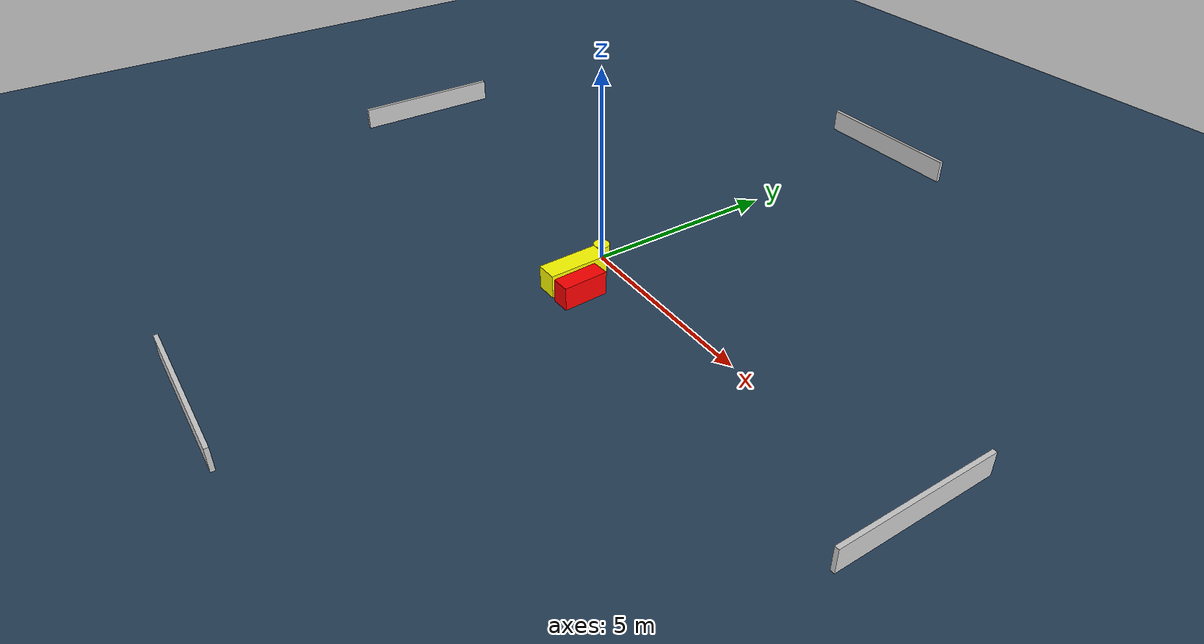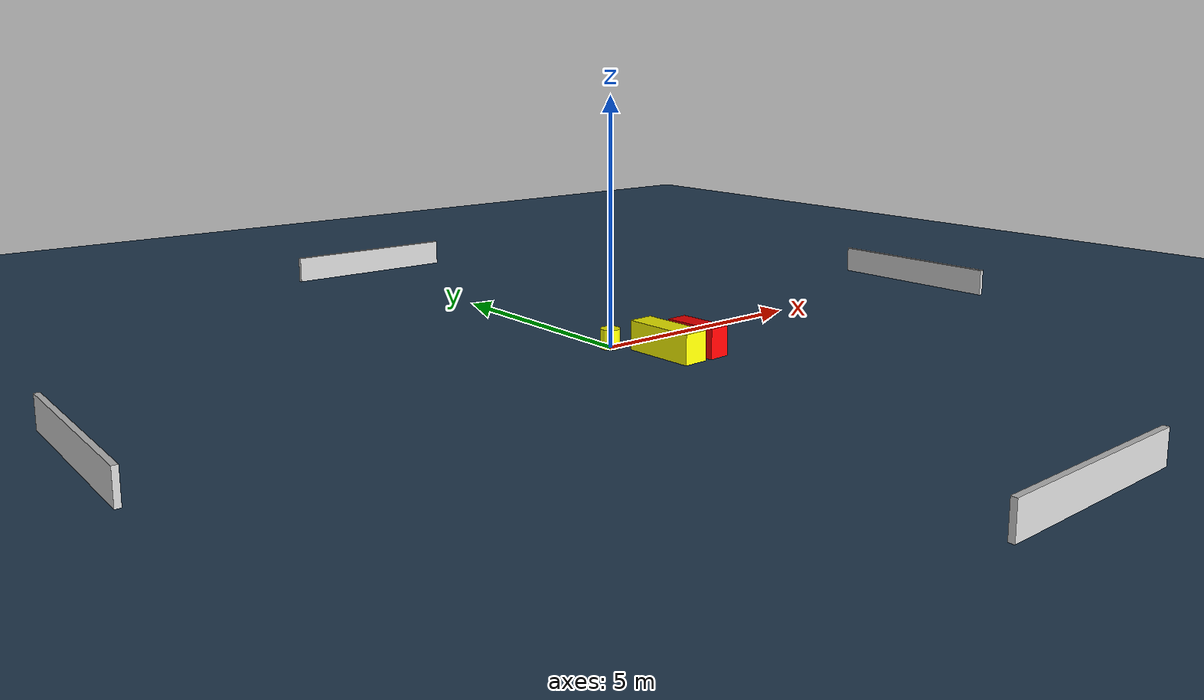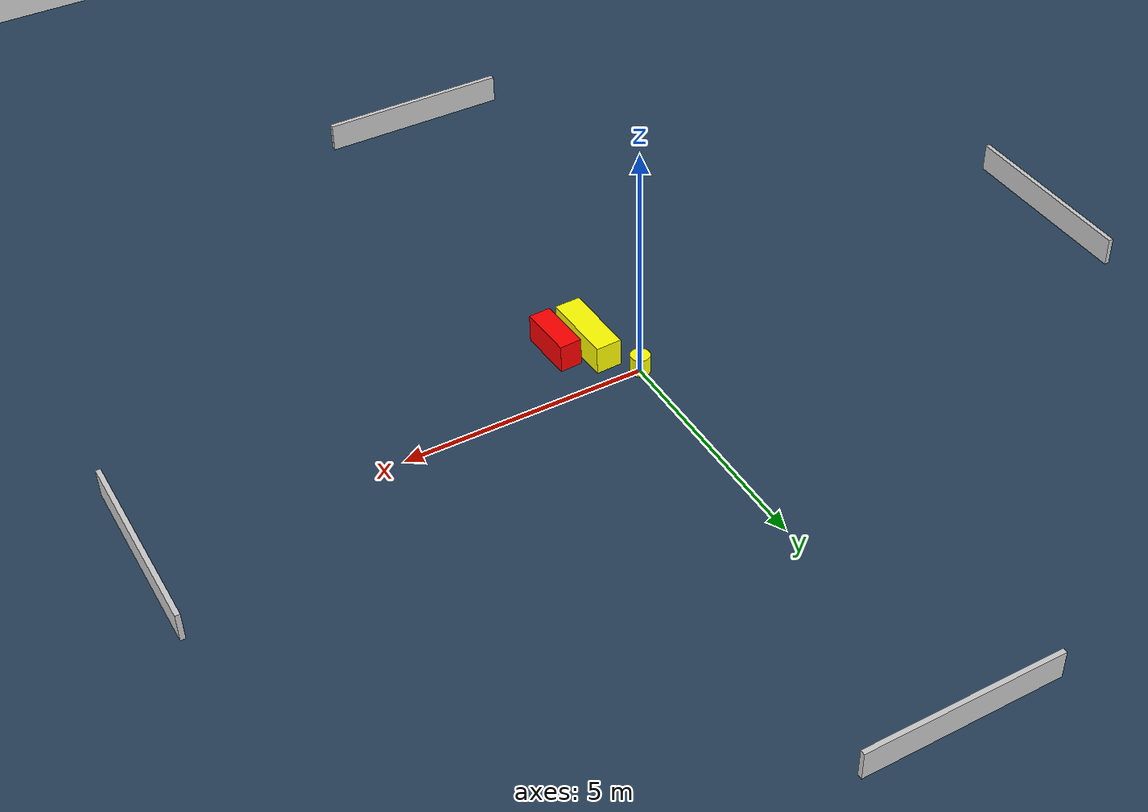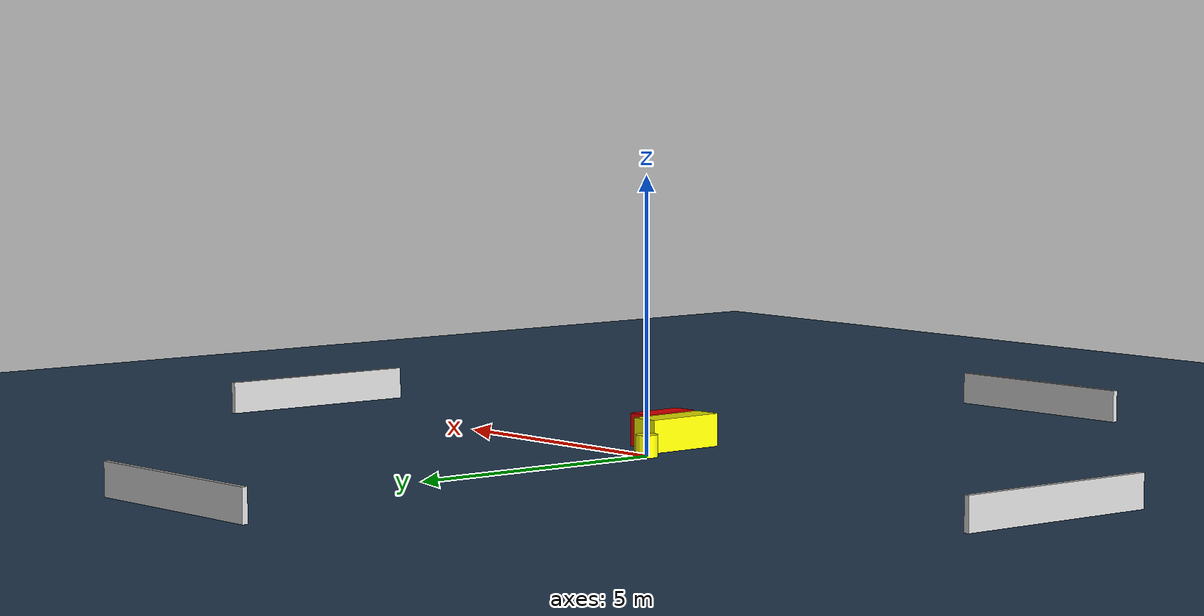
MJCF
<?xml version="1.0" ?>
<mujoco model="generated_environment">
  <option timestep="0.01" integrator="RK4" cone="elliptic"/>
  <default>
    <geom density="1"/>
  </default>
  <asset>
    <texture builtin="gradient" height="3072" name="skybox" rgb1="0.3 0.5 0.7" rgb2="0 0 0" type="skybox" width="512"/>
    <texture builtin="checker" height="300" name="groundplane" rgb1="0.2 0.3 0.4" rgb2="0.1 0.2 0.3" type="2d" width="300"/>
    <material name="groundplane" reflectance="0.2" texrepeat="5 5" texture="groundplane"/>
  </asset>
  <worldbody>
    <light dir="0 0 -1" directional="true" pos="0 0 1.5"/>
    <geom condim="3" friction="0.5 0.005 0.001" material="groundplane" name="floor" pos="0 0 0" size="0 0 0.05" type="plane"/>
    <body name="walls">
      <geom name="wall_1" condim="4" pos="-10.0 0.0 0.3" rgba="0.800000011920929 0.800000011920929 0.800000011920929 1.0" size="0.05 2.0 0.3" type="box"/>
      <geom name="wall_2" condim="4" pos="10.0 0.0 0.3" rgba="0.800000011920929 0.800000011920929 0.800000011920929 1.0" size="0.05 2.0 0.3" type="box"/>
      <geom name="wall_3" condim="4" pos="0.0 -10.0 0.3" rgba="0.800000011920929 0.800000011920929 0.800000011920929 1.0" size="2.0 0.05 0.3" type="box"/>
      <geom name="wall_4" condim="4" pos="0.0 10.0 0.3" rgba="0.800000011920929 0.800000011920929 0.800000011920929 1.0" size="2.0 0.05 0.3" type="box"/>
    </body>
    <body name="robot">
      <joint name="joint_x" type="slide" pos="0 0 0" axis="1 0 0"/>
      <joint name="joint_y" type="slide" pos="0 0 0" axis="0 1 0"/>
      <geom name="robot" type="cylinder" pos="0.0 0.0 0.2" size="0.2 0.2 0.0" mass="5.0" friction="1.0 0.005 0.0001" condim="4" rgba="1.0 1.0 0.0 1.0"/>
    </body>
    <body name="obstacle_1_movable">
      <geom name="obstacle_1_movable" condim="4" pos="0.5107998840165353 -1.1292526948216999 0.3" euler="0 0 91.85796169103874" friction="0.0 0.005 0.001" rgba="1.0 1.0 0.0 1.0" size="0.7720313370940266 0.26756818393760745 0.3" type="box" mass="0.1"/>
      <joint type="free"/>
    </body>
    <body name="obstacle_2_static">
      <geom name="obstacle_2_static" condim="4" pos="1.126636799455783 -1.3306488783480825 0.3" euler="0 0 3.0899000244526187" friction="0.0 0.005 0.001" rgba="1.0 0.0 0.0 1.0" size="0.22825100541011287 0.5736085217122235 0.3" type="box"/>
    </body>
  </worldbody>
  <actuator>
    <motor name="actuator_x" joint="joint_x" gear="1" ctrlrange="-1 1"/>
    <motor name="actuator_y" joint="joint_y" gear="1" ctrlrange="-1 1"/>
  </actuator>
</mujoco>
